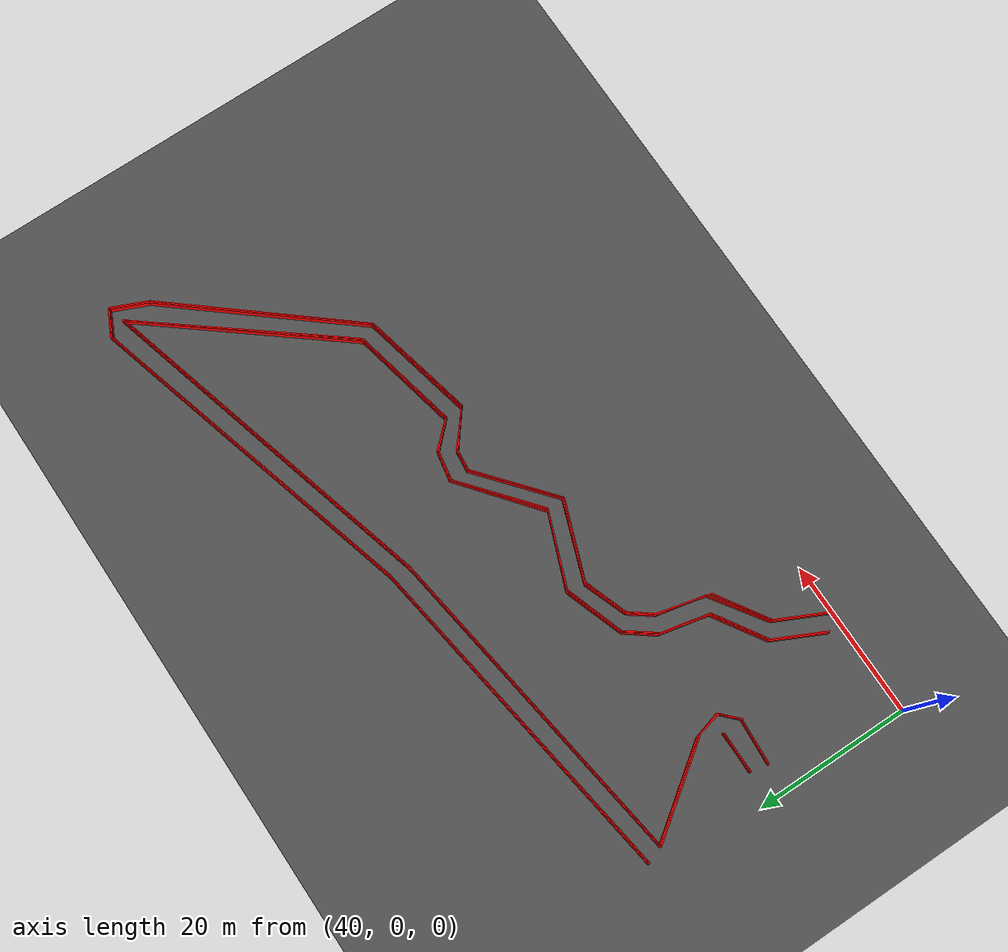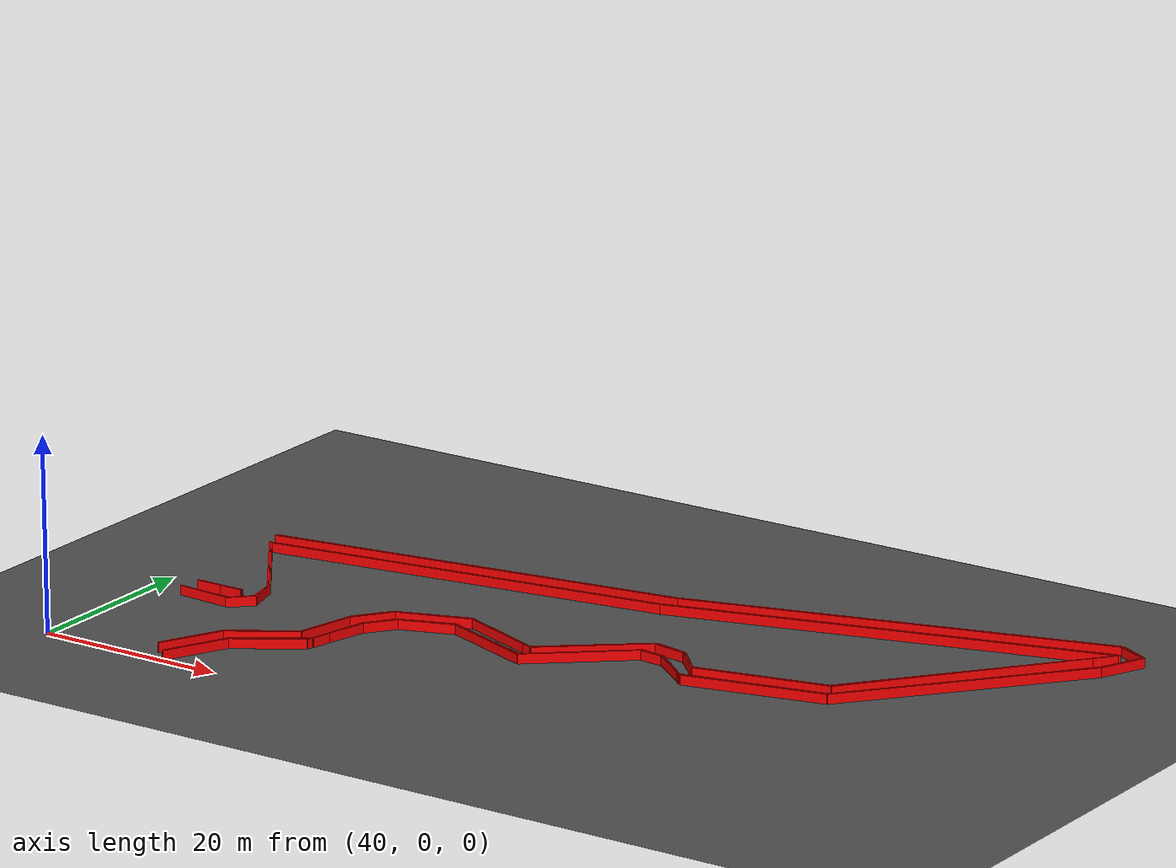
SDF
<sdf version="1.6">
 <world name="track_world">
  <model name="ground_plane">
   <static>true</static>
   <link name="link">
    <collision name="collision">
     <geometry><plane><normal>0 0 1</normal><size>1000 1000</size></plane></geometry>
    </collision>
    <visual name="visual">
     <geometry><plane><normal>0 0 1</normal><size>1000 1000</size></plane></geometry>
     <material><ambient>0.3 0.3 0.3 1</ambient><diffuse>0.3 0.3 0.3 1</diffuse></material>
    </visual>
   </link>
  </model>
  <model name="wall_0">
   <static>true</static>
   <pose>130.53235932739554 51.70391710065479 0.5 0 0 2.668236611754877</pose>
   <link name="link">
    <visual name="visual">
     <geometry><box><size>3.7262117004002757 0.15 1.0</size></box></geometry>
     <material><ambient>1 0 0 1</ambient><diffuse>1 0 0 1</diffuse></material>
    </visual>
    <collision name="collision">
     <geometry><box><size>3.7262117004002757 0.15 1.0</size></box></geometry>
    </collision>
   </link>
  </model>
  <model name="wall_1">
   <static>true</static>
   <pose>107.23603932739553 46.52695710065479 0.5 0 0 -2.8699711045585703</pose>
   <link name="link">
    <visual name="visual">
     <geometry><box><size>44.92316291886182 0.15 1.0</size></box></geometry>
     <material><ambient>1 0 0 1</ambient><diffuse>1 0 0 1</diffuse></material>
    </visual>
    <collision name="collision">
     <geometry><box><size>44.92316291886182 0.15 1.0</size></box></geometry>
    </collision>
   </link>
  </model>
  <model name="wall_2">
   <static>true</static>
   <pose>63.83855432739553 37.34594210065479 0.5 0 0 -2.9976144365376505</pose>
   <link name="link">
    <visual name="visual">
     <geometry><box><size>43.97381578767983 0.15 1.0</size></box></geometry>
     <material><ambient>1 0 0 1</ambient><diffuse>1 0 0 1</diffuse></material>
    </visual>
    <collision name="collision">
     <geometry><box><size>43.97381578767983 0.15 1.0</size></box></geometry>
    </collision>
   </link>
  </model>
  <model name="wall_5">
   <static>true</static>
   <pose>46.73031932739552 18.70079710065479 0.5 0 0 3.125720970598004</pose>
   <link name="link">
    <visual name="visual">
     <geometry><box><size>5.096711943694677 0.15 1.0</size></box></geometry>
     <material><ambient>1 0 0 1</ambient><diffuse>1 0 0 1</diffuse></material>
    </visual>
    <collision name="collision">
     <geometry><box><size>5.096711943694677 0.15 1.0</size></box></geometry>
    </collision>
   </link>
  </model>
  <model name="wall_23">
   <static>true</static>
   <pose>55.345104327395525 3.2912521006547877 0.5 0 0 1.1174576309403335</pose>
   <link name="link">
    <visual name="visual">
     <geometry><box><size>7.018343830904827 0.15 1.0</size></box></geometry>
     <material><ambient>1 0 0 1</ambient><diffuse>1 0 0 1</diffuse></material>
    </visual>
    <collision name="collision">
     <geometry><box><size>7.018343830904827 0.15 1.0</size></box></geometry>
    </collision>
   </link>
  </model>
  <model name="wall_24">
   <static>true</static>
   <pose>60.077169327395524 8.468212100654782 0.5 0 0 0.5642681888579317</pose>
   <link name="link">
    <visual name="visual">
     <geometry><box><size>7.562674272114329 0.15 1.0</size></box></geometry>
     <material><ambient>1 0 0 1</ambient><diffuse>1 0 0 1</diffuse></material>
    </visual>
    <collision name="collision">
     <geometry><box><size>7.562674272114329 0.15 1.0</size></box></geometry>
    </collision>
   </link>
  </model>
  <model name="wall_25">
   <static>true</static>
   <pose>64.12166932739552 13.887842100654787 0.5 0 0 1.325817663668033</pose>
   <link name="link">
    <visual name="visual">
     <geometry><box><size>7.003878295180474 0.15 1.0</size></box></geometry>
     <material><ambient>1 0 0 1</ambient><diffuse>1 0 0 1</diffuse></material>
    </visual>
    <collision name="collision">
     <geometry><box><size>7.003878295180474 0.15 1.0</size></box></geometry>
    </collision>
   </link>
  </model>
  <model name="wall_26">
   <static>true</static>
   <pose>66.02258432739552 18.66035210065479 0.5 0 0 0.9179496956941228</pose>
   <link name="link">
    <visual name="visual">
     <geometry><box><size>3.462243192960305 0.15 1.0</size></box></geometry>
     <material><ambient>1 0 0 1</ambient><diffuse>1 0 0 1</diffuse></material>
    </visual>
    <collision name="collision">
     <geometry><box><size>3.462243192960305 0.15 1.0</size></box></geometry>
    </collision>
   </link>
  </model>
  <model name="wall_27">
   <static>true</static>
   <pose>69.82441432739552 21.00616210065479 0.5 0 0 0.3392926144540447</pose>
   <link name="link">
    <visual name="visual">
     <geometry><box><size>5.833060853445652 0.15 1.0</size></box></geometry>
     <material><ambient>1 0 0 1</ambient><diffuse>1 0 0 1</diffuse></material>
    </visual>
    <collision name="collision">
     <geometry><box><size>5.833060853445652 0.15 1.0</size></box></geometry>
    </collision>
   </link>
  </model>
  <model name="wall_28">
   <static>true</static>
   <pose>77.42807432739554 20.15681710065479 0.5 0 0 -0.35877067027057236</pose>
   <link name="link">
    <visual name="visual">
     <geometry><box><size>10.366866944381028 0.15 1.0</size></box></geometry>
     <material><ambient>1 0 0 1</ambient><diffuse>1 0 0 1</diffuse></material>
    </visual>
    <collision name="collision">
     <geometry><box><size>10.366866944381028 0.15 1.0</size></box></geometry>
    </collision>
   </link>
  </model>
  <model name="wall_29">
   <static>true</static>
   <pose>86.81131432739554 22.098177100654787 0.5 0 0 0.6929792630592815</pose>
   <link name="link">
    <visual name="visual">
     <geometry><box><size>11.775817176540231 0.15 1.0</size></box></geometry>
     <material><ambient>1 0 0 1</ambient><diffuse>1 0 0 1</diffuse></material>
    </visual>
    <collision name="collision">
     <geometry><box><size>11.775817176540231 0.15 1.0</size></box></geometry>
    </collision>
   </link>
  </model>
  <model name="wall_30">
   <static>true</static>
   <pose>92.63539432739552 25.73822710065479 0.5 0 0 -0.09347678115858589</pose>
   <link name="link">
    <visual name="visual">
     <geometry><box><size>2.5998302712484795 0.15 1.0</size></box></geometry>
     <material><ambient>1 0 0 1</ambient><diffuse>1 0 0 1</diffuse></material>
    </visual>
    <collision name="collision">
     <geometry><box><size>2.5998302712484795 0.15 1.0</size></box></geometry>
    </collision>
   </link>
  </model>
  <model name="wall_31">
   <static>true</static>
   <pose>96.15410932739553 23.87775710065479 0.5 0 0 -0.6635557263775312</pose>
   <link name="link">
    <visual name="visual">
     <geometry><box><size>5.647257590671791 0.15 1.0</size></box></geometry>
     <material><ambient>1 0 0 1</ambient><diffuse>1 0 0 1</diffuse></material>
    </visual>
    <collision name="collision">
     <geometry><box><size>5.647257590671791 0.15 1.0</size></box></geometry>
    </collision>
   </link>
  </model>
  <model name="wall_32">
   <static>true</static>
   <pose>105.57779432739552 23.756422100654788 0.5 0 0 0.22104706267501925</pose>
   <link name="link">
    <visual name="visual">
     <geometry><box><size>14.757493210447352 0.15 1.0</size></box></geometry>
     <material><ambient>1 0 0 1</ambient><diffuse>1 0 0 1</diffuse></material>
    </visual>
    <collision name="collision">
     <geometry><box><size>14.757493210447352 0.15 1.0</size></box></geometry>
    </collision>
   </link>
  </model>
  <model name="wall_33">
   <static>true</static>
   <pose>121.47267932739553 35.80903210065479 0.5 0 0 0.8760580505981925</pose>
   <link name="link">
    <visual name="visual">
     <geometry><box><size>27.166157140215855 0.15 1.0</size></box></geometry>
     <material><ambient>1 0 0 1</ambient><diffuse>1 0 0 1</diffuse></material>
    </visual>
    <collision name="collision">
     <geometry><box><size>27.166157140215855 0.15 1.0</size></box></geometry>
    </collision>
   </link>
  </model>
  <model name="wall_34">
   <static>true</static>
   <pose>131.17947932739554 48.54920710065479 0.5 0 0 1.1574659222555717</pose>
   <link name="link">
    <visual name="visual">
     <geometry><box><size>5.034712126368297 0.15 1.0</size></box></geometry>
     <material><ambient>1 0 0 1</ambient><diffuse>1 0 0 1</diffuse></material>
    </visual>
    <collision name="collision">
     <geometry><box><size>5.034712126368297 0.15 1.0</size></box></geometry>
    </collision>
   </link>
  </model>
  <model name="wall_35">
   <static>true</static>
   <pose>131.05814432739552 48.630097100654794 0.5 0 0 -1.9822525702085945</pose>
   <link name="link">
    <visual name="visual">
     <geometry><box><size>4.854074036528478 0.15 1.0</size></box></geometry>
     <material><ambient>1 0 0 1</ambient><diffuse>1 0 0 1</diffuse></material>
    </visual>
    <collision name="collision">
     <geometry><box><size>4.854074036528478 0.15 1.0</size></box></geometry>
    </collision>
   </link>
  </model>
  <model name="wall_36">
   <static>true</static>
   <pose>121.43223432739552 35.97081210065479 0.5 0 0 -2.2632427811829285</pose>
   <link name="link">
    <visual name="visual">
     <geometry><box><size>27.114443832688167 0.15 1.0</size></box></geometry>
     <material><ambient>1 0 0 1</ambient><diffuse>1 0 0 1</diffuse></material>
    </visual>
    <collision name="collision">
     <geometry><box><size>27.114443832688167 0.15 1.0</size></box></geometry>
    </collision>
   </link>
  </model>
  <model name="wall_37">
   <static>true</static>
   <pose>105.45645932739552 23.91820210065479 0.5 0 0 -2.924093982196233</pose>
   <link name="link">
    <visual name="visual">
     <geometry><box><size>14.994353062006367 0.15 1.0</size></box></geometry>
     <material><ambient>1 0 0 1</ambient><diffuse>1 0 0 1</diffuse></material>
    </visual>
    <collision name="collision">
     <geometry><box><size>14.994353062006367 0.15 1.0</size></box></geometry>
    </collision>
   </link>
  </model>
  <model name="wall_38">
   <static>true</static>
   <pose>96.11366432739553 23.999092100654792 0.5 0 0 2.4429328288683303</pose>
   <link name="link">
    <visual name="visual">
     <geometry><box><size>5.282061256214281 0.15 1.0</size></box></geometry>
     <material><ambient>1 0 0 1</ambient><diffuse>1 0 0 1</diffuse></material>
    </visual>
    <collision name="collision">
     <geometry><box><size>5.282061256214281 0.15 1.0</size></box></geometry>
    </collision>
   </link>
  </model>
  <model name="wall_39">
   <static>true</static>
   <pose>92.75672932739553 25.85956210065479 0.5 0 0 3.0209689850096906</pose>
   <link name="link">
    <visual name="visual">
     <geometry><box><size>2.6889081930218452 0.15 1.0</size></box></geometry>
     <material><ambient>1 0 0 1</ambient><diffuse>1 0 0 1</diffuse></material>
    </visual>
    <collision name="collision">
     <geometry><box><size>2.6889081930218452 0.15 1.0</size></box></geometry>
    </collision>
   </link>
  </model>
  <model name="wall_40">
   <static>true</static>
   <pose>86.89220432739552 22.259957100654788 0.5 0 0 -2.448613390530511</pose>
   <link name="link">
    <visual name="visual">
     <geometry><box><size>11.775817176540238 0.15 1.0</size></box></geometry>
     <material><ambient>1 0 0 1</ambient><diffuse>1 0 0 1</diffuse></material>
    </visual>
    <collision name="collision">
     <geometry><box><size>11.775817176540238 0.15 1.0</size></box></geometry>
    </collision>
   </link>
  </model>
  <model name="wall_41">
   <static>true</static>
   <pose>77.38762932739553 20.318597100654785 0.5 0 0 2.7908647053415896</pose>
   <link name="link">
    <visual name="visual">
     <geometry><box><size>10.594428596361396 0.15 1.0</size></box></geometry>
     <material><ambient>1 0 0 1</ambient><diffuse>1 0 0 1</diffuse></material>
    </visual>
    <collision name="collision">
     <geometry><box><size>10.594428596361396 0.15 1.0</size></box></geometry>
    </collision>
   </link>
  </model>
  <model name="wall_42">
   <static>true</static>
   <pose>69.66263432739552 21.127497100654786 0.5 0 0 -2.7892839289156512</pose>
   <link name="link">
    <visual name="visual">
     <geometry><box><size>5.860479104382161 0.15 1.0</size></box></geometry>
     <material><ambient>1 0 0 1</ambient><diffuse>1 0 0 1</diffuse></material>
    </visual>
    <collision name="collision">
     <geometry><box><size>5.860479104382161 0.15 1.0</size></box></geometry>
    </collision>
   </link>
  </model>
  <model name="wall_43">
   <static>true</static>
   <pose>65.86080432739553 18.70079710065479 0.5 0 0 -2.209710311798784</pose>
   <link name="link">
    <visual name="visual">
     <geometry><box><size>3.5268411053093884 0.15 1.0</size></box></geometry>
     <material><ambient>1 0 0 1</ambient><diffuse>1 0 0 1</diffuse></material>
    </visual>
    <collision name="collision">
     <geometry><box><size>3.5268411053093884 0.15 1.0</size></box></geometry>
    </collision>
   </link>
  </model>
  <model name="wall_44">
   <static>true</static>
   <pose>64.16211432739553 14.211402100654787 0.5 0 0 -1.7782925532300993</pose>
   <link name="link">
    <visual name="visual">
     <geometry><box><size>6.282398805169895 0.15 1.0</size></box></geometry>
     <material><ambient>1 0 0 1</ambient><diffuse>1 0 0 1</diffuse></material>
    </visual>
    <collision name="collision">
     <geometry><box><size>6.282398805169895 0.15 1.0</size></box></geometry>
    </collision>
   </link>
  </model>
  <model name="wall_45">
   <static>true</static>
   <pose>60.15805932739553 8.872662100654786 0.5 0 0 -2.5480499405184522</pose>
   <link name="link">
    <visual name="visual">
     <geometry><box><size>8.09910493835584 0.15 1.0</size></box></geometry>
     <material><ambient>1 0 0 1</ambient><diffuse>1 0 0 1</diffuse></material>
    </visual>
    <collision name="collision"><geometry><box><size>8.09910493835584 0.15 1.0</size></box></geometry></collision>
   </link>
  </model>
  <model name="wall_46">
   <static>true</static>
   <pose>55.30465932739553 3.4934771006547862 0.5 0 0 -2.018738420964563</pose>
   <link name="link">
    <visual name="visual">
     <geometry><box><size>6.910297818893198 0.15 1.0</size></box></geometry>
     <material><ambient>1 0 0 1</ambient><diffuse>1 0 0 1</diffuse></material>
    </visual>
    <collision name="collision">
     <geometry><box><size>6.910297818893198 0.15 1.0</size></box></geometry>
    </collision>
   </link>
  </model>
  <model name="wall_63">
   <static>true</static>
   <pose>46.73031932739553 18.70079710065479 0.5 0 0 0.014924264990084361</pose>
   <link name="link">
    <visual name="visual">
     <geometry><box><size>5.420233623101497 0.15 1.0</size></box></geometry>
     <material><ambient>1 0 0 1</ambient><diffuse>1 0 0 1</diffuse></material>
    </visual>
    <collision name="collision">
     <geometry><box><size>5.420233623101497 0.15 1.0</size></box></geometry>
    </collision>
   </link>
  </model>
  <model name="wall_66">
   <static>true</static>
   <pose>64.00033432739554 37.224607100654794 0.5 0 0 0.14473722254184004</pose>
   <link name="link">
    <visual name="visual">
     <geometry><box><size>44.30564688570183 0.15 1.0</size></box></geometry>
     <material><ambient>1 0 0 1</ambient><diffuse>1 0 0 1</diffuse></material>
    </visual>
    <collision name="collision">
     <geometry><box><size>44.30564688570183 0.15 1.0</size></box></geometry>
    </collision>
   </link>
  </model>
  <model name="wall_67">
   <static>true</static>
   <pose>107.35737432739553 46.40562210065479 0.5 0 0 0.27230871720075683</pose>
   <link name="link">
    <visual name="visual">
     <geometry><box><size>44.511849440889335 0.15 1.0</size></box></geometry>
     <material><ambient>1 0 0 1</ambient><diffuse>1 0 0 1</diffuse></material>
    </visual>
    <collision name="collision">
     <geometry><box><size>44.511849440889335 0.15 1.0</size></box></geometry>
    </collision>
   </link>
  </model>
  <model name="wall_68">
   <static>true</static>
   <pose>130.41102432739552 51.62302710065479 0.5 0 0 -0.4434483364197389</pose>
   <link name="link">
    <visual name="visual">
     <geometry><box><size>3.5820664019668627 0.15 1.0</size></box></geometry>
     <material><ambient>1 0 0 1</ambient><diffuse>1 0 0 1</diffuse></material>
    </visual>
    <collision name="collision">
     <geometry><box><size>3.5820664019668627 0.15 1.0</size></box></geometry>
    </collision>
   </link>
  </model>
  <model name="wall_69">
   <static>true</static>
   <pose>107.55959932739552 44.18114710065479 0.5 0 0 -2.8750346068963992</pose>
   <link name="link">
    <visual name="visual">
     <geometry><box><size>46.36980004249533 0.15 1.0</size></box></geometry>
     <material><ambient>1 0 0 1</ambient><diffuse>1 0 0 1</diffuse></material>
    </visual>
    <collision name="collision">
     <geometry><box><size>46.36980004249533 0.15 1.0</size></box></geometry>
    </collision>
   </link>
  </model>
  <model name="wall_70">
   <static>true</static>
   <pose>64.04077932739551 35.040577100654794 0.5 0 0 -2.999160267130986</pose>
   <link name="link">
    <visual name="visual">
     <geometry><box><size>42.73825274251861 0.15 1.0</size></box></geometry>
     <material><ambient>1 0 0 1</ambient><diffuse>1 0 0 1</diffuse></material>
    </visual>
    <collision name="collision">
     <geometry><box><size>42.73825274251861 0.15 1.0</size></box></geometry>
    </collision>
   </link>
  </model>
  <model name="wall_71">
   <static>true</static>
   <pose>46.85165432739552 26.466237100654794 0.5 0 0 -0.9498567097967265</pose>
   <link name="link">
    <visual name="visual">
     <geometry><box><size>13.625343645328732 0.15 1.0</size></box></geometry>
     <material><ambient>1 0 0 1</ambient><diffuse>1 0 0 1</diffuse></material>
    </visual>
    <collision name="collision">
     <geometry><box><size>13.625343645328732 0.15 1.0</size></box></geometry>
    </collision>
   </link>
  </model>
  <model name="wall_72">
   <static>true</static>
   <pose>51.138824327395525 19.428807100654794 0.5 0 0 -1.3578579772154993</pose>
   <link name="link">
    <visual name="visual">
     <geometry><box><size>3.062089854870364 0.15 1.0</size></box></geometry>
     <material><ambient>1 0 0 1</ambient><diffuse>1 0 0 1</diffuse></material>
    </visual>
    <collision name="collision">
     <geometry><box><size>3.062089854870364 0.15 1.0</size></box></geometry>
    </collision>
   </link>
  </model>
  <model name="wall_73">
   <static>true</static>
   <pose>50.491704327395524 17.00210710065479 0.5 0 0 -2.377467876216405</pose>
   <link name="link">
    <visual name="visual">
     <geometry><box><size>2.688908193021851 0.15 1.0</size></box></geometry>
     <material><ambient>1 0 0 1</ambient><diffuse>1 0 0 1</diffuse></material>
    </visual>
    <collision name="collision">
     <geometry><box><size>2.688908193021851 0.15 1.0</size></box></geometry>
    </collision>
   </link>
  </model>
  <model name="wall_74">
   <static>true</static>
   <pose>46.56853932739552 16.274097100654785 0.5 0 0 3.07320630999929</pose>
   <link name="link">
    <visual name="visual">
     <geometry><box><size>5.918804820519094 0.15 1.0</size></box></geometry>
     <material><ambient>1 0 0 1</ambient><diffuse>1 0 0 1</diffuse></material>
    </visual>
    <collision name="collision">
     <geometry><box><size>5.918804820519094 0.15 1.0</size></box></geometry>
    </collision>
   </link>
  </model>
  <model name="wall_89">
   <static>true</static>
   <pose>53.646414327395526 4.828162100654787 0.5 0 0 1.1174576309403343</pose>
   <link name="link">
    <visual name="visual">
     <geometry><box><size>7.01834383090484 0.15 1.0</size></box></geometry>
     <material><ambient>1 0 0 1</ambient><diffuse>1 0 0 1</diffuse></material>
    </visual>
    <collision name="collision"><geometry><box><size>7.01834383090484 0.15 1.0</size></box></geometry></collision>
   </link>
  </model>
  <model name="wall_90">
   <static>true</static>
   <pose>58.338034327395526 9.96467710065479 0.5 0 0 0.560900807252372</pose>
   <link name="link">
    <visual name="visual">
     <geometry><box><size>7.451106291585167 0.15 1.0</size></box></geometry>
     <material><ambient>1 0 0 1</ambient><diffuse>1 0 0 1</diffuse></material>
    </visual>
    <collision name="collision">
     <geometry><box><size>7.451106291585167 0.15 1.0</size></box></geometry>
    </collision>
   </link>
  </model>
  <model name="wall_91">
   <static>true</static>
   <pose>62.13986432739553 14.97985710065479 0.5 0 0 1.3606137401327267</pose>
   <link name="link">
    <visual name="visual">
     <geometry><box><size>6.203266296081443 0.15 1.0</size></box></geometry>
     <material><ambient>1 0 0 1</ambient><diffuse>1 0 0 1</diffuse></material>
    </visual>
    <collision name="collision">
     <geometry><box><size>6.203266296081443 0.15 1.0</size></box></geometry>
    </collision>
   </link>
  </model>
  <model name="wall_92">
   <static>true</static>
   <pose>64.16211432739553 19.87370210065479 0.5 0 0 0.9342881110069459</pose>
   <link name="link">
    <visual name="visual">
     <geometry><box><size>4.627021131484054 0.15 1.0</size></box></geometry>
     <material><ambient>1 0 0 1</ambient><diffuse>1 0 0 1</diffuse></material>
    </visual>
    <collision name="collision">
     <geometry><box><size>4.627021131484054 0.15 1.0</size></box></geometry>
    </collision>
   </link>
  </model>
  <model name="wall_93">
   <static>true</static>
   <pose>69.25818432739553 22.987967100654785 0.5 0 0 0.32500787186664737</pose>
   <link name="link">
    <visual name="visual">
     <geometry><box><size>7.852998506462352 0.15 1.0</size></box></geometry>
     <material><ambient>1 0 0 1</ambient><diffuse>1 0 0 1</diffuse></material>
    </visual>
    <collision name="collision">
     <geometry><box><size>7.852998506462352 0.15 1.0</size></box></geometry>
    </collision>
   </link>
  </model>
  <model name="wall_94">
   <static>true</static>
   <pose>77.63029932739553 22.462182100654786 0.5 0 0 -0.3654245644654159</pose>
   <link name="link">
    <visual name="visual">
     <geometry><box><size>9.959986718269258 0.15 1.0</size></box></geometry>
     <material><ambient>1 0 0 1</ambient><diffuse>1 0 0 1</diffuse></material>
    </visual>
    <collision name="collision">
     <geometry><box><size>9.959986718269258 0.15 1.0</size></box></geometry>
    </collision>
   </link>
  </model>
  <model name="wall_95">
   <static>true</static>
   <pose>86.85175932739553 24.443987100654788 0.5 0 0 0.6886141182899742</pose>
   <link name="link">
    <visual name="visual">
     <geometry><box><size>11.838162374194733 0.15 1.0</size></box></geometry>
     <material><ambient>1 0 0 1</ambient><diffuse>1 0 0 1</diffuse></material>
    </visual>
    <collision name="collision">
     <geometry><box><size>11.838162374194733 0.15 1.0</size></box></geometry>
    </collision>
   </link>
  </model>
  <model name="wall_96">
   <static>true</static>
   <pose>93.28251432739552 27.881812100654784 0.5 0 0 -0.17219081452293936</pose>
   <link name="link">
    <visual name="visual">
     <geometry><box><size>3.7767921279837458 0.15 1.0</size></box></geometry>
     <material><ambient>1 0 0 1</ambient><diffuse>1 0 0 1</diffuse></material>
    </visual>
    <collision name="collision">
     <geometry><box><size>3.7767921279837458 0.15 1.0</size></box></geometry>
    </collision>
   </link>
  </model>
  <model name="wall_97">
   <static>true</static>
   <pose>96.63944932739552 26.021342100654785 0.5 0 0 -0.7987307066915934</pose>
   <link name="link">
    <visual name="visual">
     <geometry><box><size>4.290221366934344 0.15 1.0</size></box></geometry>
     <material><ambient>1 0 0 1</ambient><diffuse>1 0 0 1</diffuse></material>
    </visual>
    <collision name="collision">
     <geometry><box><size>4.290221366934344 0.15 1.0</size></box></geometry>
    </collision>
   </link>
  </model>
  <model name="wall_98">
   <static>true</static>
   <pose>105.01156432739553 25.980897100654786 0.5 0 0 0.21430488380316742</pose>
   <link name="link">
    <visual name="visual">
     <geometry><box><size>14.073232808239208 0.15 1.0</size></box></geometry>
     <material><ambient>1 0 0 1</ambient><diffuse>1 0 0 1</diffuse></material>
    </visual>
    <collision name="collision">
     <geometry><box><size>14.073232808239208 0.15 1.0</size></box></geometry>
    </collision>
   </link>
  </model>
  <model name="wall_99">
   <static>true</static>
   <pose>120.90644932739553 38.88285210065479 0.5 0 0 0.901702587788455</pose>
   <link name="link">
    <visual name="visual">
     <geometry><box><size>29.081389383956523 0.15 1.0</size></box></geometry>
     <material><ambient>1 0 0 1</ambient><diffuse>1 0 0 1</diffuse></material>
    </visual>
    <collision name="collision">
     <geometry><box><size>29.081389383956523 0.15 1.0</size></box></geometry>
    </collision>
   </link>
  </model>
  <model name="wall_100">
   <static>true</static>
   <pose>120.70422432739554 38.801962100654784 0.5 0 0 -2.249036817286927</pose>
   <link name="link">
    <visual name="visual">
     <geometry><box><size>28.878976177593287 0.15 1.0</size></box></geometry>
     <material><ambient>1 0 0 1</ambient><diffuse>1 0 0 1</diffuse></material>
    </visual>
    <collision name="collision">
     <geometry><box><size>28.878976177593287 0.15 1.0</size></box></geometry>
    </collision>
   </link>
  </model>
  <model name="wall_101">
   <static>true</static>
   <pose>104.84978432739553 26.10223210065479 0.5 0 0 -2.9304993203670473</pose>
   <link name="link">
    <visual name="visual">
     <geometry><box><size>13.898022549701095 0.15 1.0</size></box></geometry>
     <material><ambient>1 0 0 1</ambient><diffuse>1 0 0 1</diffuse></material>
    </visual>
    <collision name="collision">
     <geometry><box><size>13.898022549701095 0.15 1.0</size></box></geometry>
    </collision>
   </link>
  </model>
  <model name="wall_102">
   <static>true</static>
   <pose>96.67989432739553 26.142677100654794 0.5 0 0 2.3139660880793422</pose>
   <link name="link">
    <visual name="visual">
     <geometry><box><size>4.064672194962343 0.15 1.0</size></box></geometry>
     <material><ambient>1 0 0 1</ambient><diffuse>1 0 0 1</diffuse></material>
    </visual>
    <collision name="collision">
     <geometry><box><size>4.064672194962343 0.15 1.0</size></box></geometry>
    </collision>
   </link>
  </model>
  <model name="wall_103">
   <static>true</static>
   <pose>93.44429432739553 28.003147100654793 0.5 0 0 2.9483811697419884</pose>
   <link name="link">
    <visual name="visual">
     <geometry><box><size>3.7914895547396794 0.15 1.0</size></box></geometry>
     <material><ambient>1 0 0 1</ambient><diffuse>1 0 0 1</diffuse></material>
    </visual>
    <collision name="collision">
     <geometry><box><size>3.7914895547396794 0.15 1.0</size></box></geometry>
    </collision>
   </link>
  </model>
  <model name="wall_104">
   <static>true</static>
   <pose>86.81131432739552 24.56532210065479 0.5 0 0 -2.468922101782722</pose>
   <link name="link">
    <visual name="visual">
     <geometry><box><size>12.203403303832909 0.15 1.0</size></box></geometry>
     <material><ambient>1 0 0 1</ambient><diffuse>1 0 0 1</diffuse></material>
    </visual>
    <collision name="collision">
     <geometry><box><size>12.203403303832909 0.15 1.0</size></box></geometry>
    </collision>
   </link>
  </model>
  <model name="wall_105">
   <static>true</static>
   <pose>77.42807432739554 22.583517100654788 0.5 0 0 2.765631699718487</pose>
   <link name="link">
    <visual name="visual">
     <geometry><box><size>9.913893712063889 0.15 1.0</size></box></geometry>
     <material><ambient>1 0 0 1</ambient><diffuse>1 0 0 1</diffuse></material>
    </visual>
    <collision name="collision">
     <geometry><box><size>9.913893712063889 0.15 1.0</size></box></geometry>
    </collision>
   </link>
  </model>
  <model name="wall_106">
   <static>true</static>
   <pose>69.09640432739553 23.109302100654787 0.5 0 0 -2.8068558162729786</pose>
   <link name="link">
    <visual name="visual">
     <geometry><box><size>7.879200888719629 0.15 1.0</size></box></geometry>
     <material><ambient>1 0 0 1</ambient><diffuse>1 0 0 1</diffuse></material>
    </visual>
    <collision name="collision">
     <geometry><box><size>7.879200888719629 0.15 1.0</size></box></geometry>
    </collision>
   </link>
  </model>
  <model name="wall_107">
   <static>true</static>
   <pose>64.08122432739552 20.116372100654786 0.5 0 0 -2.2218730482393747</pose>
   <link name="link">
    <visual name="visual">
     <geometry><box><size>4.271114558847601 0.15 1.0</size></box></geometry>
     <material><ambient>1 0 0 1</ambient><diffuse>1 0 0 1</diffuse></material>
    </visual>
    <collision name="collision">
     <geometry><box><size>4.271114558847601 0.15 1.0</size></box></geometry>
    </collision>
   </link>
  </model>
  <model name="wall_108">
   <static>true</static>
   <pose>62.09941932739553 15.262972100654785 0.5 0 0 -1.7853892082861198</pose>
   <link name="link">
    <visual name="visual">
     <geometry><box><size>6.457535385369563 0.15 1.0</size></box></geometry>
     <material><ambient>1 0 0 1</ambient><diffuse>1 0 0 1</diffuse></material>
    </visual>
    <collision name="collision">
     <geometry><box><size>6.457535385369563 0.15 1.0</size></box></geometry>
    </collision>
   </link>
  </model>
  <model name="wall_109">
   <static>true</static>
   <pose>58.25714432739553 10.126457100654783 0.5 0 0 -2.5806918463374213</pose>
   <link name="link">
    <visual name="visual">
     <geometry><box><size>7.451106291585167 0.15 1.0</size></box></geometry>
     <material><ambient>1 0 0 1</ambient><diffuse>1 0 0 1</diffuse></material>
    </visual>
    <collision name="collision">
     <geometry><box><size>7.451106291585167 0.15 1.0</size></box></geometry>
    </collision>
   </link>
  </model>
  <model name="wall_110">
   <static>true</static>
   <pose>53.56552432739553 4.989942100654787 0.5 0 0 -2.02413502264946</pose>
   <link name="link">
    <visual name="visual">
     <geometry><box><size>7.018343830904827 0.15 1.0</size></box></geometry>
     <material><ambient>1 0 0 1</ambient><diffuse>1 0 0 1</diffuse></material>
    </visual>
    <collision name="collision">
     <geometry><box><size>7.018343830904827 0.15 1.0</size></box></geometry>
    </collision>
   </link>
  </model>
  <model name="wall_126">
   <static>true</static>
   <pose>50.53214932739552 16.96166210065479 0.5 0 0 0.7665324773757782</pose>
   <link name="link">
    <visual name="visual">
     <geometry><box><size>3.0320265336075067 0.15 1.0</size></box></geometry>
     <material><ambient>1 0 0 1</ambient><diffuse>1 0 0 1</diffuse></material>
    </visual>
    <collision name="collision">
     <geometry><box><size>3.0320265336075067 0.15 1.0</size></box></geometry>
    </collision>
   </link>
  </model>
  <model name="wall_127">
   <static>true</static>
   <pose>51.13882432739552 19.752367100654787 0.5 0 0 1.8429422173260848</pose>
   <link name="link">
    <visual name="visual">
     <geometry><box><size>3.611174581116228 0.15 1.0</size></box></geometry>
     <material><ambient>1 0 0 1</ambient><diffuse>1 0 0 1</diffuse></material>
    </visual>
    <collision name="collision">
     <geometry><box><size>3.611174581116228 0.15 1.0</size></box></geometry>
    </collision>
   </link>
  </model>
  <model name="wall_128">
   <static>true</static>
   <pose>46.89209932739552 26.708907100654784 0.5 0 0 2.19543174956651</pose>
   <link name="link">
    <visual name="visual">
     <geometry><box><size>12.863799135908485 0.15 1.0</size></box></geometry>
     <material><ambient>1 0 0 1</ambient><diffuse>1 0 0 1</diffuse></material>
    </visual>
    <collision name="collision">
     <geometry><box><size>12.863799135908485 0.15 1.0</size></box></geometry>
    </collision>
   </link>
  </model>
  <model name="wall_129">
   <static>true</static>
   <pose>64.32389432739552 34.95968710065478 0.5 0 0 0.14216421997317474</pose>
   <link name="link">
    <visual name="visual">
     <geometry><box><size>42.818325161221566 0.15 1.0</size></box></geometry>
     <material><ambient>1 0 0 1</ambient><diffuse>1 0 0 1</diffuse></material>
    </visual>
    <collision name="collision">
     <geometry><box><size>42.818325161221566 0.15 1.0</size></box></geometry>
    </collision>
   </link>
  </model>
  <model name="wall_130">
   <static>true</static>
   <pose>107.64048932739553 44.01936710065478 0.5 0 0 0.2659426432202045</pose>
   <link name="link">
    <visual name="visual">
     <geometry><box><size>45.85899445976768 0.15 1.0</size></box></geometry>
     <material><ambient>1 0 0 1</ambient><diffuse>1 0 0 1</diffuse></material>
    </visual>
    <collision name="collision">
     <geometry><box><size>45.85899445976768 0.15 1.0</size></box></geometry>
    </collision>
   </link>
  </model>
 </world>
</sdf>
